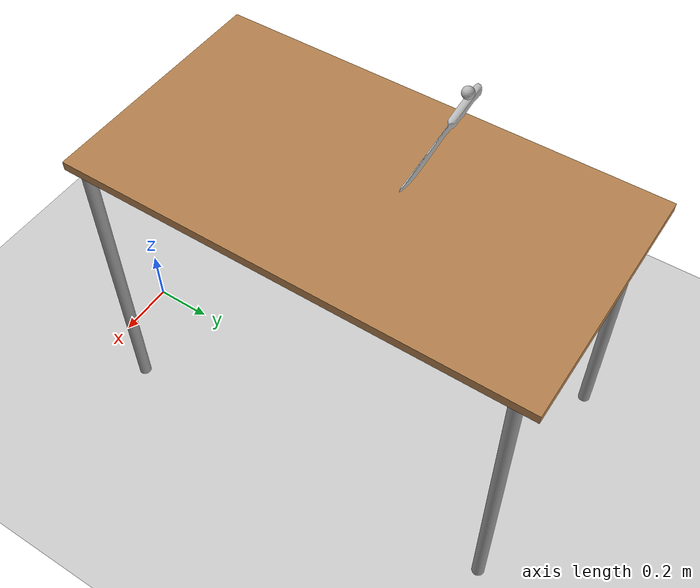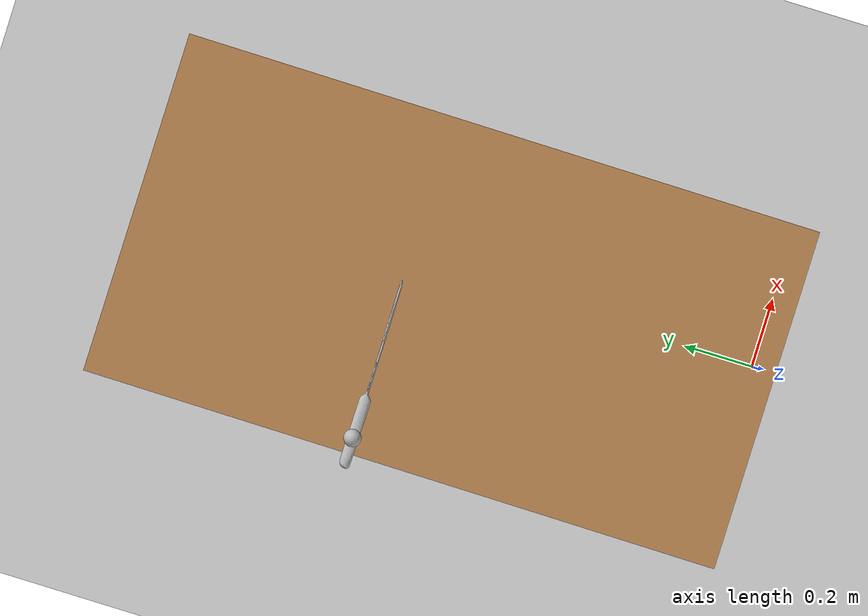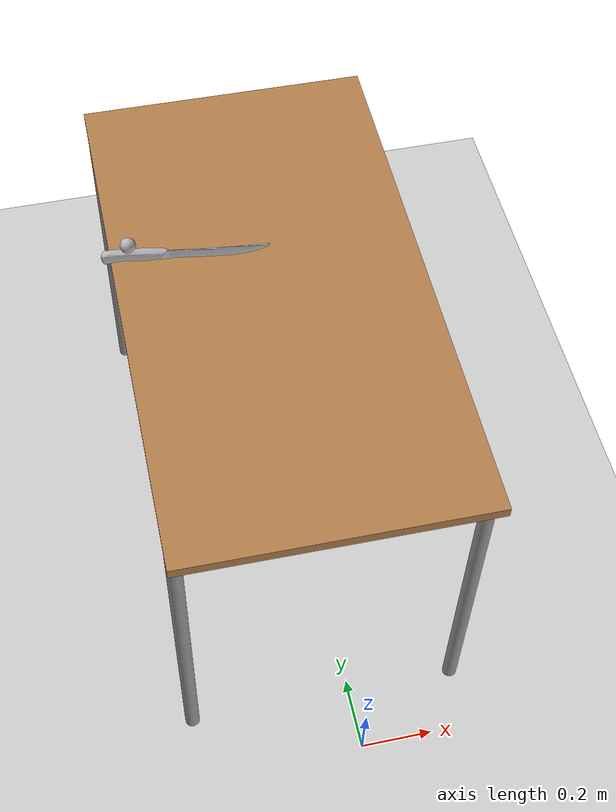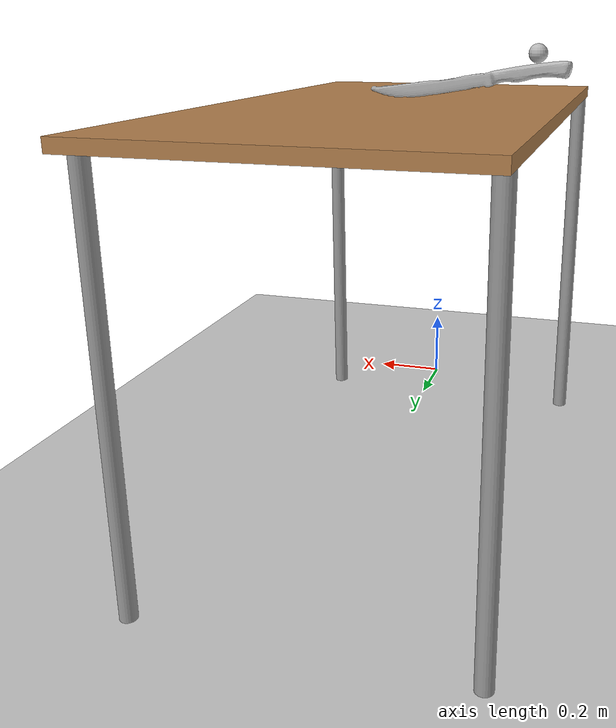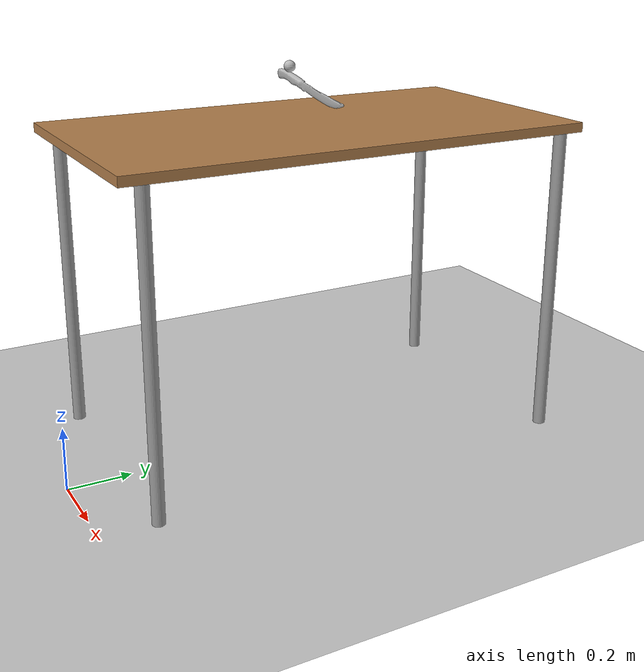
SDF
<sdf version="1.4">
    <world name="default">

        <physics type="ode">
            <max_step_size>0.001</max_step_size>
            <real_time_factor>1</real_time_factor>
            <real_time_update_rate>1000</real_time_update_rate>
            <ode>
                <solver>
                    <type>quick</type>
                    <iters>70</iters>
                    <sor>1.4</sor>
                </solver>
                <constraints>
                    <cfm>0</cfm>
                    <erp>1</erp>
                    <contact_max_correcting_vel>0</contact_max_correcting_vel>
                    <contact_surface_layer>0</contact_surface_layer>
                </constraints>
            </ode>
        </physics>

        <include>
            <uri>model://sun</uri>
        </include>

        <include>
            <uri>model://ground_plane</uri>
        </include>

        <include>
            <uri>model://table</uri>
            <pose>-0.071633 0.854817 0 0 0 -1.57694</pose>
            <static>true</static>
        </include>

        <include>
            <uri>model://knife</uri>
            <pose>-0.305 0.974 1.082 -1.57746 0.148233 -0.000983</pose>
        </include>

        <include>
            <uri>model://gripper</uri>
            <pose>-0.423582 0.974000 1.137179 0 0 0</pose>
            <plugin name="grip" filename="libGripPlugin.so"/>
            <plugin name="scrape" filename="libSwingPlugin.so"/>
        </include>

        <plugin name="butter" filename="libButterFactoryPlugin.so">
            <pose>-0.127870 1.058302 1.044992 0 0 0</pose>
            <size>4 2 5 0.005</size>
        </plugin>

        <gui>
            <camera name='user_camera'>
                <pose>0.892691 1.54384 1.57989 -1.4918e-17 0.375643 -2.675</pose>
                <view_controller>orbit</view_controller>
            </camera>
        </gui>

    </world>
</sdf>

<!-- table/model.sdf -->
<sdf version="1.5">
  <model name="table">
    <static>true</static>
    <link name="link">
      <collision name="surface">
        <pose>0 0 1.0 0 0 0</pose>
        <geometry>
          <box>
            <size>1.5 0.8 0.03</size>
          </box>
        </geometry>
        <surface>
          <friction>
            <ode>
              <mu>0.6</mu>
              <mu2>0.6</mu2>
            </ode>
          </friction>
        </surface>
      </collision>
      <visual name="visual1">
        <pose>0 0 1.0 0 0 0</pose>
        <geometry>
          <box>
            <size>1.5 0.8 0.03</size>
          </box>
        </geometry>
        <material>
          <script>
            <uri>model://media/materials/scripts/gazebo.material</uri>
            <name>Gazebo/Wood</name>
          </script>
        </material>
      </visual>
      <collision name="front_left_leg">
        <pose>0.68 0.38 0.5 0 0 0</pose>
        <geometry>
          <cylinder>
            <radius>0.02</radius>
            <length>1.0</length>
          </cylinder>
        </geometry>
      </collision>
      <visual name="front_left_leg">
        <pose>0.68 0.38 0.5 0 0 0</pose>
        <geometry>
          <cylinder>
            <radius>0.02</radius>
            <length>1.0</length>
          </cylinder>
        </geometry>
        <material>
          <script>
            <uri>model://media/materials/scripts/gazebo.material</uri>
            <name>Gazebo/Grey</name>
          </script>
        </material>
      </visual>
      <collision name="front_right_leg">
        <pose>0.68 -0.38 0.5 0 0 0</pose>
        <geometry>
          <cylinder>
            <radius>0.02</radius>
            <length>1.0</length>
          </cylinder>
        </geometry>
      </collision>
      <visual name="front_right_leg">
        <pose>0.68 -0.38 0.5 0 0 0</pose>
        <geometry>
          <cylinder>
            <radius>0.02</radius>
            <length>1.0</length>
          </cylinder>
        </geometry>
        <material>
          <script>
            <uri>model://media/materials/scripts/gazebo.material</uri>
            <name>Gazebo/Grey</name>
          </script>
        </material>
      </visual>
      <collision name="back_right_leg">
        <pose>-0.68 -0.38 0.5 0 0 0</pose>
        <geometry>
          <cylinder>
            <radius>0.02</radius>
            <length>1.0</length>
          </cylinder>
        </geometry>
      </collision>
      <visual name="back_right_leg">
        <pose>-0.68 -0.38 0.5 0 0 0</pose>
        <geometry>
          <cylinder>
            <radius>0.02</radius>
            <length>1.0</length>
          </cylinder>
        </geometry>
        <material>
          <script>
            <uri>model://media/materials/scripts/gazebo.material</uri>
            <name>Gazebo/Grey</name>
          </script>
        </material>
      </visual>
      <collision name="back_left_leg">
        <pose>-0.68 0.38 0.5 0 0 0</pose>
        <geometry>
          <cylinder>
            <radius>0.02</radius>
            <length>1.0</length>
          </cylinder>
        </geometry>
      </collision>
      <visual name="back_left_leg">
        <pose>-0.68 0.38 0.5 0 0 0</pose>
        <geometry>
          <cylinder>
            <radius>0.02</radius>
            <length>1.0</length>
          </cylinder>
        </geometry>
        <material>
          <script>
            <uri>model://media/materials/scripts/gazebo.material</uri>
            <name>Gazebo/Grey</name>
          </script>
        </material>
      </visual>
    </link>
  </model>
</sdf>

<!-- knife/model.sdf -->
<sdf version='1.6'>
    <model name='knife'>
	<plugin name="knife_position" filename="libgazebo_ros_p3d.so">
                <frameName>world</frameName>
                <bodyName>link</bodyName>
                <topicName>odom</topicName>
                <updateRate>30.0</updateRate>
            </plugin>

        <static>false</static>
        <pose>0 0 0 0 0 0</pose>
        <link name='link'>
            <collision name='collision'>
                <geometry>
                    <mesh>
                        <uri>model://knife/model.dae</uri>
                    </mesh>
                </geometry>
                <surface>
                    <friction>
                        <ode>
                            <mu>0.5</mu>
                            <mu2>0.5</mu2>
                        </ode>
                    </friction>
                </surface>
            </collision>
            <visual name='visual'>
                <geometry>
                    <mesh>
                        <uri>model://knife/model.dae</uri>
                    </mesh>
                </geometry>
            </visual>
        </link>
    </model>
</sdf>

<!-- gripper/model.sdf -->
<sdf version='1.6'>
    <model name='gripper'>
        <static>false</static>
        <allow_auto_disable>false</allow_auto_disable>

        <pose>0 0 0 0 0 0</pose>

        <link name='link'>
            <pose>0 0 0 0 0 0</pose>

            <inertial>
                <mass>0.5</mass>
            </inertial>

            <velocity_decay>
              <linear>0.5</linear>
              <angular>0.5</angular>
            </velocity_decay>

            <gravity>false</gravity>

            <visual name='visual'>
                <geometry>
                    <sphere>
                        <radius>0.02</radius>
                    </sphere>
                </geometry>
            </visual>

        </link>
    </model>
</sdf>
